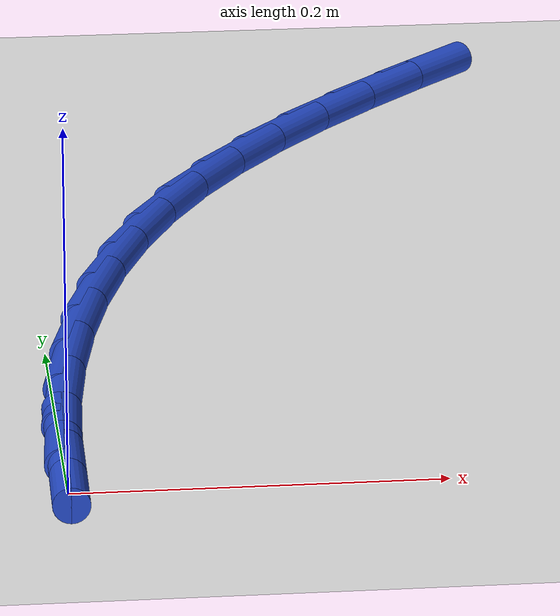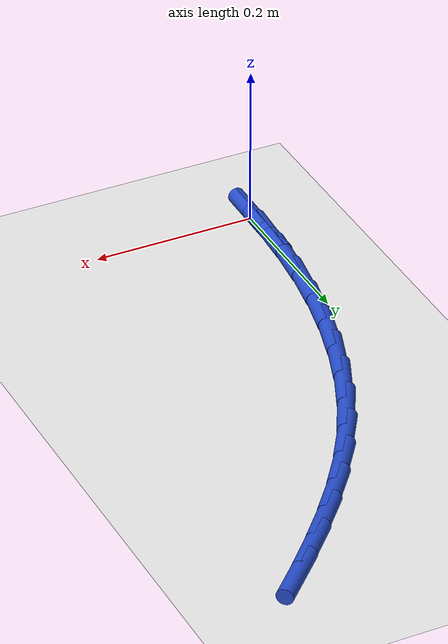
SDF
<sdf version="1.6">
 <world name="default">
  <model name="ground_plane">
   <static>1</static>
   <link name="link">
    <collision name="collision">
     <geometry><plane><normal>0 0 1</normal><size>100 100</size></plane></geometry>
     <surface><friction><ode><mu>100</mu><mu2>50</mu2></ode></friction></surface>
    </collision>
    <visual name="visual">
     <cast_shadows>0</cast_shadows>
     <geometry><plane><normal>0 0 1</normal><size>100 100</size></plane></geometry>
     <material>
      <script><uri>file://media/materials/scripts/gazebo.material</uri><name>Gazebo/WhiteGlow</name></script>
     </material>
    </visual>
   </link>
  </model>
  <model name="line">
   <link name="link_0">
    <pose>-3.122502256758253e-17 -2.7755575615628914e-17 0.01 0 1.57 1.5520226301388294</pose>
    <collision name="collision">
     <geometry><cylinder><radius>0.01</radius><length>0.08</length></cylinder></geometry>
    </collision>
    <visual name="visual">
     <material>
      <script><name>Gazebo/Blue</name><uri>file://media/materials/scripts/gazebo.material</uri></script>
     </material>
     <geometry><cylinder><radius>0.01</radius><length>0.08</length></cylinder></geometry>
    </visual>
   </link>
   <link name="link_1">
    <pose>0.0010015984255238716 0.05334488829884319 0.01 0 1.57 1.504426610533225</pose>
    <collision name="collision">
     <geometry><cylinder><radius>0.01</radius><length>0.08</length></cylinder></geometry>
    </collision>
    <visual name="visual">
     <material>
      <script><name>Gazebo/Blue</name><uri>file://media/materials/scripts/gazebo.material</uri></script>
     </material>
     <geometry><cylinder><radius>0.01</radius><length>0.08</length></cylinder></geometry>
    </visual>
   </link>
   <link name="link_2">
    <pose>0.004533960083231481 0.10648920953153208 0.01 0 1.57 1.4543161858426692</pose>
    <collision name="collision">
     <geometry><cylinder><radius>0.01</radius><length>0.08</length></cylinder></geometry>
    </collision>
    <visual name="visual">
     <material>
      <script><name>Gazebo/Blue</name><uri>file://media/materials/scripts/gazebo.material</uri></script>
     </material>
     <geometry><cylinder><radius>0.01</radius><length>0.08</length></cylinder></geometry>
    </visual>
   </link>
   <link name="link_3">
    <pose>0.010697657855469344 0.15916597399450033 0.01 0 1.57 1.4011821433536542</pose>
    <collision name="collision">
     <geometry><cylinder><radius>0.01</radius><length>0.08</length></cylinder></geometry>
    </collision>
    <visual name="visual">
     <material>
      <script><name>Gazebo/Blue</name><uri>file://media/materials/scripts/gazebo.material</uri></script>
     </material>
     <geometry><cylinder><radius>0.01</radius><length>0.08</length></cylinder></geometry>
    </visual>
   </link>
   <link name="link_4">
    <pose>0.019593264624583995 0.21110819198418143 0.01 0 1.57 1.3445092169974802</pose>
    <collision name="collision">
     <geometry><cylinder><radius>0.01</radius><length>0.08</length></cylinder></geometry>
    </collision>
    <visual name="visual">
     <material>
      <script><name>Gazebo/Blue</name><uri>file://media/materials/scripts/gazebo.material</uri></script>
     </material>
     <geometry><cylinder><radius>0.01</radius><length>0.08</length></cylinder></geometry>
    </visual>
   </link>
   <link name="link_5">
    <pose>0.03132135327292199 0.2620488737970091 0.01 0 1.57 1.2837874621200238</pose>
    <collision name="collision">
     <geometry><cylinder><radius>0.01</radius><length>0.08</length></cylinder></geometry>
    </collision>
    <visual name="visual">
     <material>
      <script><name>Gazebo/Blue</name><uri>file://media/materials/scripts/gazebo.material</uri></script>
     </material>
     <geometry><cylinder><radius>0.01</radius><length>0.08</length></cylinder></geometry>
    </visual>
   </link>
   <link name="link_6">
    <pose>0.045982496682829846 0.31172102972941673 0.01 0 1.57 1.2185337788464226</pose>
    <collision name="collision">
     <geometry><cylinder><radius>0.01</radius><length>0.08</length></cylinder></geometry>
    </collision>
    <visual name="visual">
     <material>
      <script><name>Gazebo/Blue</name><uri>file://media/materials/scripts/gazebo.material</uri></script>
     </material>
     <geometry><cylinder><radius>0.01</radius><length>0.08</length></cylinder></geometry>
    </visual>
   </link>
   <link name="link_7">
    <pose>0.06367726773665412 0.3598576700778381 0.01 0 1.57 1.1483263583352719</pose>
    <collision name="collision">
     <geometry><cylinder><radius>0.01</radius><length>0.08</length></cylinder></geometry>
    </collision>
    <visual name="visual">
     <material>
      <script><name>Gazebo/Blue</name><uri>file://media/materials/scripts/gazebo.material</uri></script>
     </material>
     <geometry><cylinder><radius>0.01</radius><length>0.08</length></cylinder></geometry>
    </visual>
   </link>
   <link name="link_8">
    <pose>0.08450623931674137 0.4061918051387067 0.01 0 1.57 1.0729823649552666</pose>
    <collision name="collision">
     <geometry><cylinder><radius>0.01</radius><length>0.08</length></cylinder></geometry>
    </collision>
    <visual name="visual">
     <material>
      <script><name>Gazebo/Blue</name><uri>file://media/materials/scripts/gazebo.material</uri></script>
     </material>
     <geometry><cylinder><radius>0.01</radius><length>0.08</length></cylinder></geometry>
    </visual>
   </link>
   <link name="link_9">
    <pose>0.10856555104489769 0.45046182197065393 0.01 0 1.57 0.9981862404198574</pose>
    <collision name="collision">
     <geometry><cylinder><radius>0.01</radius><length>0.08</length></cylinder></geometry>
    </collision>
    <visual name="visual">
     <material>
      <script><name>Gazebo/Blue</name><uri>file://media/materials/scripts/gazebo.material</uri></script>
     </material>
     <geometry><cylinder><radius>0.01</radius><length>0.08</length></cylinder></geometry>
    </visual>
   </link>
   <link name="link_10">
    <pose>0.1357571023206065 0.49264168672250913 0.01 0 1.57 0.9325389733299151</pose>
    <collision name="collision">
     <geometry><cylinder><radius>0.01</radius><length>0.08</length></cylinder></geometry>
    </collision>
    <visual name="visual">
     <material>
      <script><name>Gazebo/Blue</name><uri>file://media/materials/scripts/gazebo.material</uri></script>
     </material>
     <geometry><cylinder><radius>0.01</radius><length>0.08</length></cylinder></geometry>
    </visual>
   </link>
   <link name="link_11">
    <pose>0.1657170139983342 0.5330277079862896 0.01 0 1.57 0.8772916254785371</pose>
    <collision name="collision">
     <geometry><cylinder><radius>0.01</radius><length>0.08</length></cylinder></geometry>
    </collision>
    <visual name="visual">
     <material>
      <script><name>Gazebo/Blue</name><uri>file://media/materials/scripts/gazebo.material</uri></script>
     </material>
     <geometry><cylinder><radius>0.01</radius><length>0.08</length></cylinder></geometry>
    </visual>
   </link>
   <link name="link_12">
    <pose>0.1980622235505943 0.5719394604088672 0.01 0 1.57 0.8326500714863959</pose>
    <collision name="collision">
     <geometry><cylinder><radius>0.01</radius><length>0.08</length></cylinder></geometry>
    </collision>
    <visual name="visual">
     <material>
      <script><name>Gazebo/Blue</name><uri>file://media/materials/scripts/gazebo.material</uri></script>
     </material>
     <geometry><cylinder><radius>0.01</radius><length>0.08</length></cylinder></geometry>
    </visual>
   </link>
   <link name="link_13">
    <pose>0.23240966844990016 0.6096965186371133 0.01 0 1.57 0.7985040103526376</pose>
    <collision name="collision">
     <geometry><cylinder><radius>0.01</radius><length>0.08</length></cylinder></geometry>
    </collision>
    <visual name="visual">
     <material>
      <script><name>Gazebo/Blue</name><uri>file://media/materials/scripts/gazebo.material</uri></script>
     </material>
     <geometry><cylinder><radius>0.01</radius><length>0.08</length></cylinder></geometry>
    </visual>
   </link>
   <link name="link_14">
    <pose>0.26837628616876535 0.6466184573178996 0.01 0 1.57 0.7745801676602412</pose>
    <collision name="collision">
     <geometry><cylinder><radius>0.01</radius><length>0.08</length></cylinder></geometry>
    </collision>
    <visual name="visual">
     <material>
      <script><name>Gazebo/Blue</name><uri>file://media/materials/scripts/gazebo.material</uri></script>
     </material>
     <geometry><cylinder><radius>0.01</radius><length>0.08</length></cylinder></geometry>
    </visual>
   </link>
   <link name="link_140">
    <pose>-3.8163916471489756e-17 1.6653345369377348e-16 0.01 0 1.57 1.552537345886721</pose>
    <collision name="collision">
     <geometry><cylinder><radius>0.01</radius><length>0.08</length></cylinder></geometry>
    </collision>
    <visual name="visual">
     <material>
      <script><name>Gazebo/Blue</name><uri>file://media/materials/scripts/gazebo.material</uri></script>
     </material>
     <geometry><cylinder><radius>0.01</radius><length>0.08</length></cylinder></geometry>
    </visual>
   </link>
   <link name="link_141">
    <pose>0.000974272272372706 0.05335259420353431 0.01 0 1.57 1.5525373458867213</pose>
    <collision name="collision">
     <geometry><cylinder><radius>0.01</radius><length>0.08</length></cylinder></geometry>
    </collision>
    <visual name="visual">
     <material>
      <script><name>Gazebo/Blue</name><uri>file://media/materials/scripts/gazebo.material</uri></script>
     </material>
     <geometry><cylinder><radius>0.01</radius><length>0.08</length></cylinder></geometry>
    </visual>
   </link>
  </model>
 </world>
</sdf>
